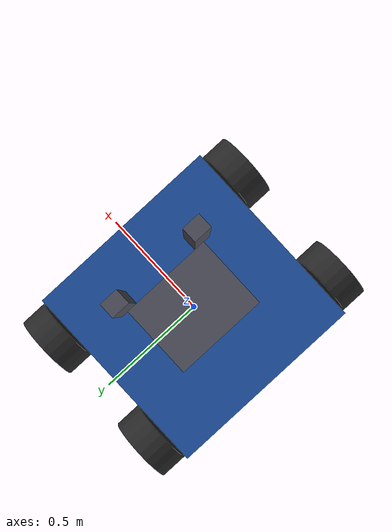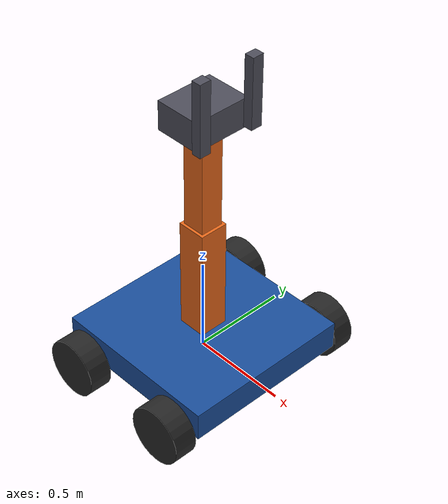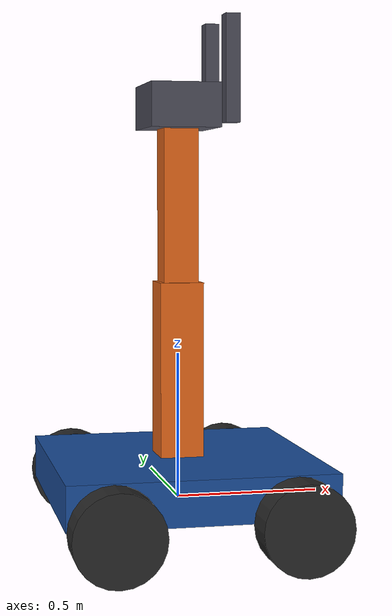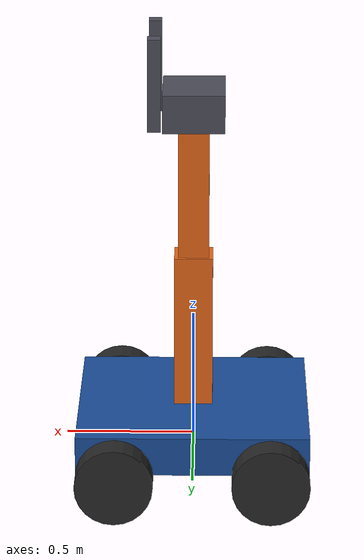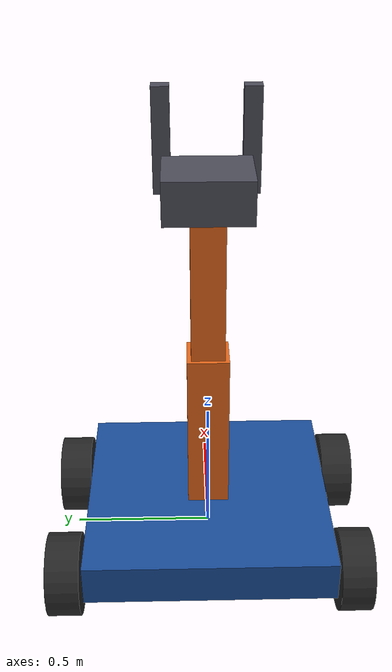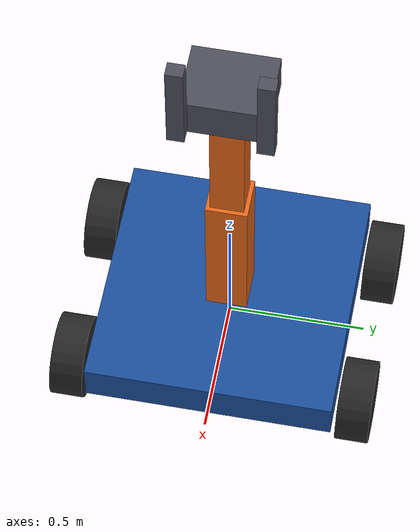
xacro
<?xml version="1.0"?>
<robot xmlns:xacro="http://www.ros.org/wiki/xacro" name="mon_robot">

  <!-- Import the original robot xacro -->
  <xacro:include filename="$(find my_robot_controller)/description/robot.urdf.xacro" />

  <!-- Override the gazebo_ros2_control plugin with namespace -->
  <gazebo>
    <plugin name="gazebo_ros2_control" filename="libgazebo_ros2_control.so">
      <robot_param>robot_description</robot_param>
      <robot_param_node>my_robot_state_publisher</robot_param_node>
      <parameters>$(find my_robot_controller)/config/my_controllers.yaml</parameters>
      <ros>
        <namespace>/my_bot</namespace>
      </ros>
    </plugin>
  </gazebo>

</robot>

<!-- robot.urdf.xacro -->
<robot xmlns:xacro="http://www.ros.org/wiki/xacro" name="mon_robot">

  <xacro:macro name="inertial_box" params="mass x y z *origin">
    <inertial>
      <xacro:insert_block name="origin"/>
      <mass value="${mass}" />
      <inertia ixx="${(1/12) * mass * (y*y+z*z)}" ixy="0.0" ixz="0.0"
               iyy="${(1/12) * mass * (x*x+z*z)}" iyz="0.0"
               izz="${(1/12) * mass * (x*x+y*y)}" />
    </inertial>
  </xacro:macro>

  <xacro:macro name="inertial_cylinder" params="mass length radius *origin">
    <inertial>
      <xacro:insert_block name="origin"/>
      <mass value="${mass}" />
      <inertia ixx="${(1/12) * mass * (3*radius*radius + length*length)}" ixy="0.0" ixz="0.0"
               iyy="${(1/12) * mass * (3*radius*radius + length*length)}" iyz="0.0"
               izz="${(1/2) * mass * (radius*radius)}" />
    </inertial>
  </xacro:macro>

  <!-- Enhanced Material Definitions -->
  <material name="chassis_blue">
    <color rgba="0.1 0.3 0.6 1"/>
  </material>
  <material name="wheel_dark">
    <color rgba="0.15 0.15 0.15 1"/>
  </material>
  <material name="arm_orange">
    <color rgba="0.9 0.4 0.1 1"/>
  </material>
  <material name="gripper_metal">
    <color rgba="0.3 0.3 0.35 1"/>
  </material>
  <material name="accent_yellow">
    <color rgba="1.0 0.8 0.0 1"/>
  </material>

  <link name="base_link">
    <visual>
      <origin xyz="0 0 0.075"/>
      <geometry><box size="0.9 0.9 0.15"/></geometry>
      <material name="chassis_blue"/>
    </visual>
    <collision>
      <origin xyz="0 0 0.075"/>
      <geometry><box size="0.9 0.9 0.15"/></geometry>
    </collision>
    <xacro:inertial_box mass="5.0" x="0.9" y="0.9" z="0.15">
        <origin xyz="0 0 0.075" rpy="0 0 0"/>
    </xacro:inertial_box>
  </link>

  <xacro:macro name="wheel" params="prefix x_reflect y_reflect">
    <link name="${prefix}_link">
      <visual>
        <geometry><cylinder radius="0.15" length="0.12"/></geometry>
        <material name="wheel_dark"/>
      </visual>
      <collision>
        <geometry><cylinder radius="0.15" length="0.12"/></geometry>
      </collision>
      <xacro:inertial_cylinder mass="0.2" length="0.12" radius="0.15">
        <origin xyz="0 0 0" rpy="0 0 0"/>
      </xacro:inertial_cylinder>
    </link>

    <joint name="${prefix}_joint" type="continuous">
      <parent link="base_link"/>
      <child link="${prefix}_link"/>
      <origin xyz="${x_reflect*0.3} ${y_reflect*0.525} 0" rpy="-1.57 0 0"/>
      <axis xyz="0 0 1"/>
    </joint>
  </xacro:macro>

  <xacro:wheel prefix="front_left" x_reflect="1" y_reflect="1" />
  <xacro:wheel prefix="front_right" x_reflect="1" y_reflect="-1" />
  <xacro:wheel prefix="rear_left" x_reflect="-1" y_reflect="1" />
  <xacro:wheel prefix="rear_right" x_reflect="-1" y_reflect="-1" />

  <link name="arm_1_link">
    <visual>
      <origin xyz="-0.3 0 0.3" rpy="0 0 0"/>
      <geometry><box size="0.15 0.15 0.6"/></geometry>
      <material name="arm_orange"/>
    </visual>
    <collision>
      <origin xyz="-0.3 0 0.3" rpy="0 0 0"/>
      <geometry><box size="0.15 0.15 0.6"/></geometry>
    </collision>
    <xacro:inertial_box mass="0.1" x="0.15" y="0.15" z="0.6">
      <origin xyz="-0.3 0 0.3" rpy="0 0 0"/>
    </xacro:inertial_box>
  </link>

  <joint name="shoulder_joint" type="revolute">
    <parent link="base_link"/>
    <child link="arm_1_link"/>
    <origin xyz="0.3 0 0.15" rpy="0 0 0"/>
    <axis xyz="0 1 0"/> <limit lower="-1.57" upper="1.57" effort="10" velocity="1"/>
    <dynamics damping="0.1" friction="0.1"/>
  </joint>

  <link name="arm_2_link">
    <visual>
      <origin xyz="0 0 0.3" rpy="0 0 0"/>
      <geometry><box size="0.12 0.12 0.6"/></geometry>
      <material name="arm_orange"/>
    </visual>
    <collision>
      <origin xyz="0 0 0.3" rpy="0 0 0"/>
      <geometry><box size="0.12 0.12 0.6"/></geometry>
    </collision>
    <xacro:inertial_box mass="0.1" x="0.12" y="0.12" z="0.6">
      <origin xyz="0 0 0.3" rpy="0 0 0"/>
    </xacro:inertial_box>
  </link>

  <joint name="elbow_joint" type="revolute">
    <parent link="arm_1_link"/>
    <child link="arm_2_link"/>
    <origin xyz="-0.3 0 0.6" rpy="0 0 0"/> <axis xyz="0 1 0"/>
    <limit lower="-2.5" upper="2.5" effort="10" velocity="1"/>
    <dynamics damping="0.1" friction="0.1"/>
  </joint>

  <!-- PINCE - Joint de rotation (NEW) -->
  <joint name="gripper_rotate_joint" type="revolute">
    <parent link="arm_2_link"/>
    <child link="gripper_base_link"/>
    <origin xyz="0 0 0.6" rpy="0 0 -1.5708"/>
    <axis xyz="0 0 1"/>
    <limit lower="-3.14159" upper="3.14159" effort="50" velocity="1.0"/>
    <dynamics damping="0.1" friction="0.1"/>
  </joint>

  <!-- Supprimer l'ancien gripper_base_joint (fixed) -->

  <!-- PINCE - Base de la pince -->
  <link name="gripper_base_link">
    <visual>
      <origin xyz="0 0 0" rpy="0 0 0"/>
      <geometry><box size="0.3 0.24 0.15"/></geometry>
      <material name="gripper_metal"/>
    </visual>
    <collision>
      <origin xyz="0 0 0" rpy="0 0 0"/>
      <geometry><box size="0.3 0.24 0.15"/></geometry>
    </collision>
    <xacro:inertial_box mass="0.15" x="0.3" y="0.24" z="0.15">
      <origin xyz="0 0 0" rpy="0 0 0"/>
    </xacro:inertial_box>
  </link>

  <!-- DOIGT GAUCHE (plus mince, plus long) -->
  <link name="gripper_left_link">
    <visual>
      <origin xyz="-0.15 0.15 0.12" rpy="0 0 0"/>
      <geometry><box size="0.06 0.05 0.36"/></geometry>
      <material name="gripper_metal"/>
    </visual>
    <collision>
      <origin xyz="-0.15 0.15 0.12" rpy="0 0 0"/>
      <geometry><box size="0.06 0.05 0.36"/></geometry>
    </collision>
    <xacro:inertial_box mass="0.10" x="0.06" y="0.05" z="0.36">
      <origin xyz="-0.15 0.15 0.12" rpy="0 0 0"/>
    </xacro:inertial_box>
  </link>

  <joint name="gripper_left_joint" type="prismatic">
    <parent link="gripper_base_link"/>
    <child link="gripper_left_link"/>
    <origin xyz="0 0 0" rpy="0 0 0"/>
    <axis xyz="1 0 0"/>
    <limit lower="-0.60" upper="0.0" effort="300" velocity="0.5"/>
    <dynamics damping="0.5" friction="0.5"/>
  </joint>

  <!-- DOIGT DROIT (plus mince, plus long) -->
  <link name="gripper_right_link">
    <visual>
      <origin xyz="0.15 0.15 0.12" rpy="0 0 0"/>
      <geometry><box size="0.06 0.05 0.36"/></geometry>
      <material name="gripper_metal"/>
    </visual>
    <collision>
      <origin xyz="0.15 0.15 0.12" rpy="0 0 0"/>
      <geometry><box size="0.06 0.05 0.36"/></geometry>
    </collision>
    <xacro:inertial_box mass="0.10" x="0.06" y="0.05" z="0.36">
      <origin xyz="0.15 0.15 0.12" rpy="0 0 0"/>
    </xacro:inertial_box>
  </link>

  <joint name="gripper_right_joint" type="prismatic">
    <parent link="gripper_base_link"/>
    <child link="gripper_right_link"/>
    <origin xyz="0 0 0" rpy="0 0 0"/>
    <axis xyz="-1 0 0"/>
    <limit lower="-0.60" upper="0.0" effort="300" velocity="0.5"/>
    <dynamics damping="0.5" friction="0.5"/>
  </joint>

  <ros2_control name="GazeboSystem" type="system">
    <hardware>
      <plugin>gazebo_ros2_control/GazeboSystem</plugin>
    </hardware>

    <xacro:macro name="control_joint" params="name">
      <joint name="${name}">
        <command_interface name="velocity">
          <param name="min">-10</param>
          <param name="max">10</param>
        </command_interface>
        <state_interface name="position"/>
        <state_interface name="velocity"/>
      </joint>
    </xacro:macro>

    <!-- Bras + Rotation Grip (POSITION) -->
    <joint name="shoulder_joint">
        <command_interface name="position"/>
        <state_interface name="position"/>
        <state_interface name="velocity"/>
    </joint>
    <joint name="elbow_joint">
        <command_interface name="position"/>
        <state_interface name="position"/>
        <state_interface name="velocity"/>
    </joint>
    <joint name="gripper_rotate_joint">
        <command_interface name="position"/>
        <state_interface name="position"/>
        <state_interface name="velocity"/>
    </joint>

    <!-- Roues (VELOCITY) -->
    <xacro:control_joint name="front_left_joint"/>
    <xacro:control_joint name="front_right_joint"/>
    <xacro:control_joint name="rear_left_joint"/>
    <xacro:control_joint name="rear_right_joint"/>

    <!-- Pince - Doigts (POSITION) -->
    <joint name="gripper_left_joint">
        <command_interface name="position"/>
        <state_interface name="position"/>
        <state_interface name="velocity"/>
    </joint>
    <joint name="gripper_right_joint">
        <command_interface name="position"/>
        <state_interface name="position"/>
        <state_interface name="velocity"/>
    </joint>
  </ros2_control>

  <!-- Gazebo Material Colors -->
  <gazebo reference="base_link">
    <material>Gazebo/Blue</material>
  </gazebo>
  <gazebo reference="front_left_link">
    <material>Gazebo/DarkGrey</material>
    <mu1>100.0</mu1>
    <mu2>100.0</mu2>
    <kp>1000000.0</kp>
    <kd>100.0</kd>
    <minDepth>0.001</minDepth>
  </gazebo>
  <gazebo reference="front_right_link">
    <material>Gazebo/DarkGrey</material>
    <mu1>100.0</mu1>
    <mu2>100.0</mu2>
    <kp>1000000.0</kp>
    <kd>100.0</kd>
    <minDepth>0.001</minDepth>
  </gazebo>
  <gazebo reference="rear_left_link">
    <material>Gazebo/DarkGrey</material>
    <mu1>100.0</mu1>
    <mu2>100.0</mu2>
    <kp>1000000.0</kp>
    <kd>100.0</kd>
    <minDepth>0.001</minDepth>
  </gazebo>
  <gazebo reference="rear_right_link">
    <material>Gazebo/DarkGrey</material>
    <mu1>100.0</mu1>
    <mu2>100.0</mu2>
    <kp>1000000.0</kp>
    <kd>100.0</kd>
    <minDepth>0.001</minDepth>
  </gazebo>
  <gazebo reference="arm_1_link">
    <material>Gazebo/Orange</material>
  </gazebo>
  <gazebo reference="arm_2_link">
    <material>Gazebo/Orange</material>
  </gazebo>
  <gazebo reference="gripper_base_link">
    <material>Gazebo/Grey</material>
  </gazebo>
  <gazebo reference="gripper_left_link">
    <material>Gazebo/Grey</material>
  </gazebo>
  <gazebo reference="gripper_right_link">
    <material>Gazebo/Grey</material>
  </gazebo>

  <gazebo>
    <plugin name="my_bot_ros2_control" filename="libgazebo_ros2_control.so">
      <robot_param>robot_description</robot_param>
      <robot_param_node>/my_bot/robot_state_publisher</robot_param_node>
      <parameters>$(find my_robot_controller)/config/my_controllers_namespaced.yaml</parameters>
      <ros>
        <namespace>/my_bot</namespace>
        <argument>--ros-args</argument>
        <argument>-r</argument>
        <argument>__node:=my_bot_controller_manager</argument>
      </ros>
    </plugin>
  </gazebo>

  <!-- Include LIDAR sensor -->
  <xacro:include filename="$(find my_robot_controller)/description/lidar.xacro" />

  <!-- Include IMU sensor -->
  <xacro:include filename="$(find my_robot_controller)/description/imu.xacro" />

</robot>

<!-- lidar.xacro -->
<robot xmlns:xacro="http://www.ros.org/wiki/xacro">

  <!-- 2D LIDAR Sensor (Hokuyo-style) for SLAM and Navigation -->
  <link name="laser_frame">
    <visual>
      <origin xyz="0 0 0" rpy="0 0 0"/>
      <geometry>
        <cylinder radius="0.05" length="0.04"/>
      </geometry>
      <material name="red">
        <color rgba="1 0 0 1"/>
      </material>
    </visual>
    <collision>
      <origin xyz="0 0 0" rpy="0 0 0"/>
      <geometry>
        <cylinder radius="0.05" length="0.04"/>
      </geometry>
    </collision>
    <inertial>
      <mass value="0.125"/>
      <origin xyz="0 0 0" rpy="0 0 0"/>
      <inertia ixx="0.001" ixy="0" ixz="0" iyy="0.001" iyz="0" izz="0.001"/>
    </inertial>
  </link>

  <!-- Mount LIDAR on chassis -->
  <joint name="laser_joint" type="fixed">
    <parent link="base_link"/>
    <child link="laser_frame"/>
    <origin xyz="0 0 0.17" rpy="0 0 0"/>
  </joint>

  <!-- Gazebo LIDAR Plugin - OPTIMISÉ POUR SLAM -->
  <gazebo reference="laser_frame">
    <sensor name="laser" type="ray">
      <pose>0 0 0 0 0 0</pose>
      <visualize>true</visualize>
      <update_rate>20</update_rate>
      <ray>
        <scan>
          <horizontal>
            <samples>720</samples>
            <resolution>1</resolution>
            <min_angle>-3.14159</min_angle>
            <max_angle>3.14159</max_angle>
          </horizontal>
        </scan>
        <range>
          <min>0.15</min>
          <max>15.0</max>
          <resolution>0.01</resolution>
        </range>
        <noise>
          <type>gaussian</type>
          <mean>0.0</mean>
          <stddev>0.001</stddev>
        </noise>
      </ray>
      <plugin name="scan" filename="libgazebo_ros_ray_sensor.so">
        <ros>
          <remapping>~/out:=scan</remapping>
        </ros>
        <output_type>sensor_msgs/LaserScan</output_type>
        <frame_name>laser_frame</frame_name>
      </plugin>
    </sensor>
  </gazebo>

</robot>

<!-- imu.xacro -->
<robot xmlns:xacro="http://www.ros.org/wiki/xacro">

  <!-- IMU Sensor for improved odometry and SLAM -->
  <link name="imu_link">
    <visual>
      <origin xyz="0 0 0" rpy="0 0 0"/>
      <geometry>
        <box size="0.05 0.05 0.02"/>
      </geometry>
      <material name="imu_green">
        <color rgba="0 1 0 1"/>
      </material>
    </visual>
    <collision>
      <origin xyz="0 0 0" rpy="0 0 0"/>
      <geometry>
        <box size="0.05 0.05 0.02"/>
      </geometry>
    </collision>
    <inertial>
      <mass value="0.015"/>
      <origin xyz="0 0 0" rpy="0 0 0"/>
      <inertia ixx="0.00001" ixy="0" ixz="0" iyy="0.00001" iyz="0" izz="0.00001"/>
    </inertial>
  </link>

  <!-- Mount IMU at chassis center (aligned with base_link origin) -->
  <joint name="imu_joint" type="fixed">
    <parent link="base_link"/>
    <child link="imu_link"/>
    <origin xyz="0 0 0.16" rpy="0 0 0"/>
  </joint>

  <!-- Gazebo IMU Plugin -->
  <gazebo reference="imu_link">
    <sensor name="imu_sensor" type="imu">
      <always_on>true</always_on>
      <update_rate>100</update_rate>
      <visualize>true</visualize>
      <imu>
        <angular_velocity>
          <x>
            <noise type="gaussian">
              <mean>0.0</mean>
              <stddev>2e-4</stddev>
            </noise>
          </x>
          <y>
            <noise type="gaussian">
              <mean>0.0</mean>
              <stddev>2e-4</stddev>
            </noise>
          </y>
          <z>
            <noise type="gaussian">
              <mean>0.0</mean>
              <stddev>2e-4</stddev>
            </noise>
          </z>
        </angular_velocity>
        <linear_acceleration>
          <x>
            <noise type="gaussian">
              <mean>0.0</mean>
              <stddev>1.7e-2</stddev>
            </noise>
          </x>
          <y>
            <noise type="gaussian">
              <mean>0.0</mean>
              <stddev>1.7e-2</stddev>
            </noise>
          </y>
          <z>
            <noise type="gaussian">
              <mean>0.0</mean>
              <stddev>1.7e-2</stddev>
            </noise>
          </z>
        </linear_acceleration>
      </imu>
      <plugin name="imu_plugin" filename="libgazebo_ros_imu_sensor.so">
        <ros>
          <remapping>~/out:=imu/data</remapping>
        </ros>
        <initial_orientation_as_reference>false</initial_orientation_as_reference>
        <frame_name>imu_link</frame_name>
      </plugin>
    </sensor>
  </gazebo>

</robot>
